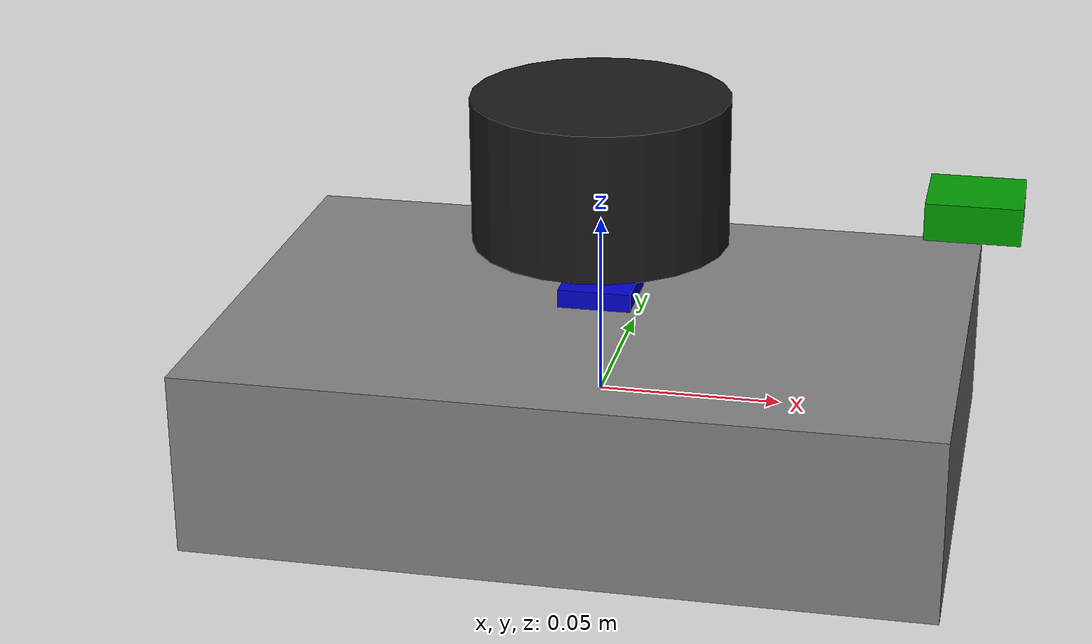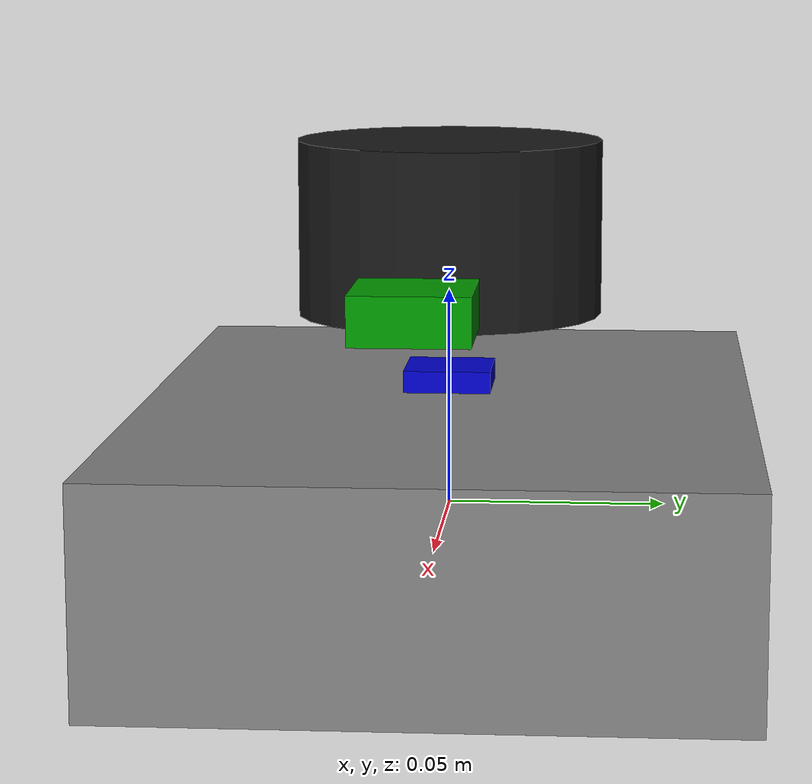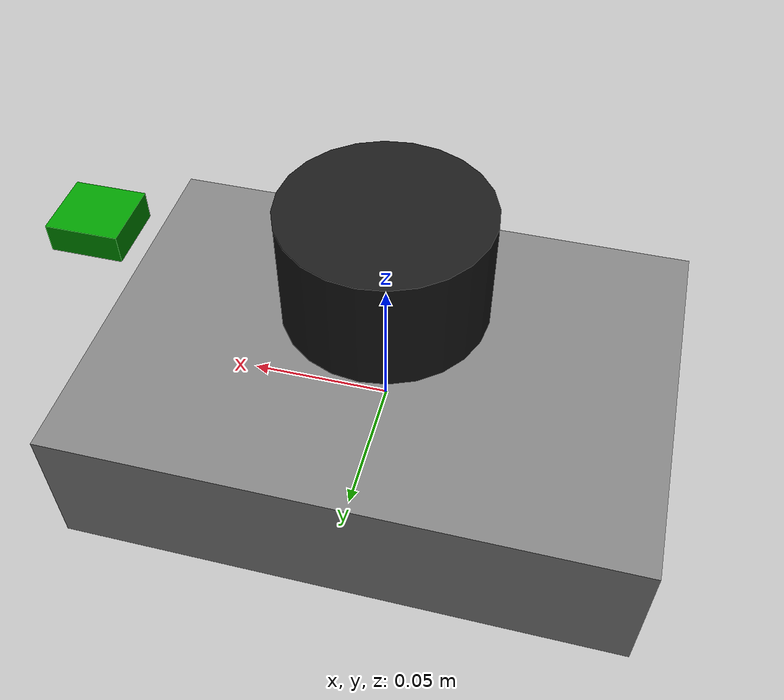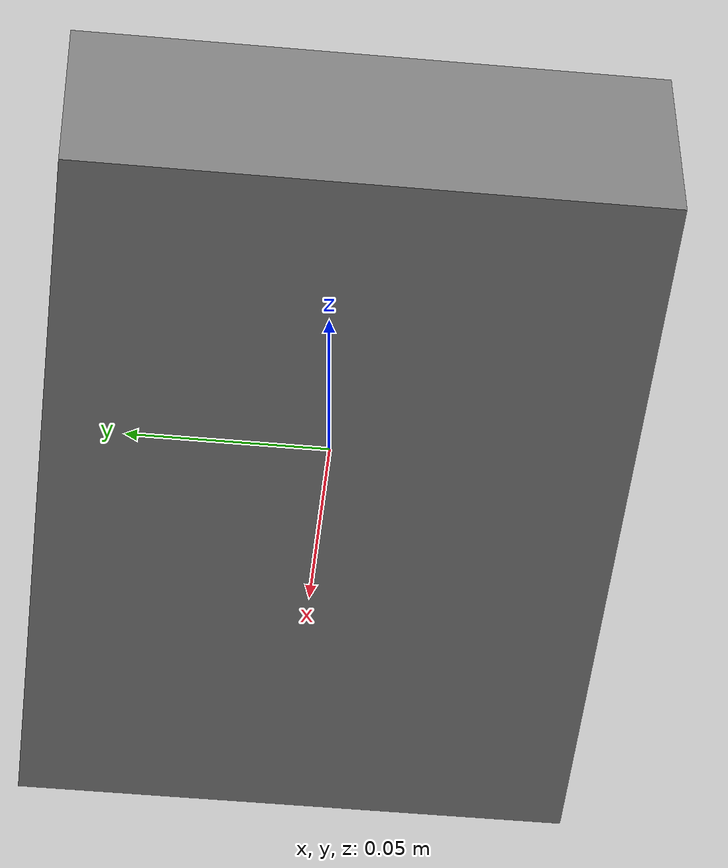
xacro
<?xml version="1.0"?>

<robot name="delivery_robot"
       xmlns:xacro="http://www.ros.org/wiki/xacro">

  <!-- BASE LINK -->
  <link name="base_link">

    <visual>
      <geometry>
        <box size="0.20 0.14 0.05"/>
      </geometry>

      <material name="grey">
        <color rgba="0.5 0.5 0.5 1.0"/>
      </material>
    </visual>

    <collision>
      <geometry>
        <box size="0.20 0.14 0.05"/>
      </geometry>
    </collision>

    <inertial>
      <mass value="0.8"/>

      <inertia
        ixx="0.001"
        ixy="0"
        ixz="0"
        iyy="0.001"
        iyz="0"
        izz="0.002"/>
    </inertial>

  </link>

  <!-- ULTRASONIC SENSOR -->
  <link name="ultrasonic_link"/>

  <joint name="ultrasonic_joint"
         type="fixed">

    <parent link="base_link"/>

    <child link="ultrasonic_link"/>

    <origin
      xyz="0.120 0.060 0.086"
      rpy="0 0 0"/>

  </joint>

  <!-- RPLIDAR A1 -->
  <link name="laser">

    <visual>
      <geometry>
        <cylinder
          radius="0.035"
          length="0.04"/>
      </geometry>

      <material name="black">
        <color rgba="0.1 0.1 0.1 1.0"/>
      </material>
    </visual>

  </link>

  <joint name="base_link_to_laser"
         type="fixed">

    <parent link="base_link"/>

    <child link="laser"/>

    <origin
      xyz="0.0 0.0 0.065"
      rpy="0 0 0"/>

  </joint>

  <!-- MPU6050 -->
  <link name="imu_link">

    <visual>
      <geometry>
        <box size="0.02 0.02 0.005"/>
      </geometry>

      <material name="blue">
        <color rgba="0.0 0.0 0.8 1.0"/>
      </material>
    </visual>

  </link>

  <joint name="base_link_to_imu"
         type="fixed">

    <parent link="base_link"/>

    <child link="imu_link"/>

    <origin
      xyz="0.0 0.0 0.03"
      rpy="0 0 0"/>

  </joint>

  <!-- CAMERA -->
  <link name="camera_link">

    <visual>
      <geometry>
        <box size="0.025 0.024 0.01"/>
      </geometry>

      <material name="green">
        <color rgba="0.0 0.6 0.0 1.0"/>
      </material>
    </visual>

  </link>

  <joint name="base_link_to_camera"
         type="fixed">

    <parent link="base_link"/>

    <child link="camera_link"/>

    <origin
      xyz="0.10 0.0 0.06"
      rpy="0 0 0"/>

  </joint>

</robot>
